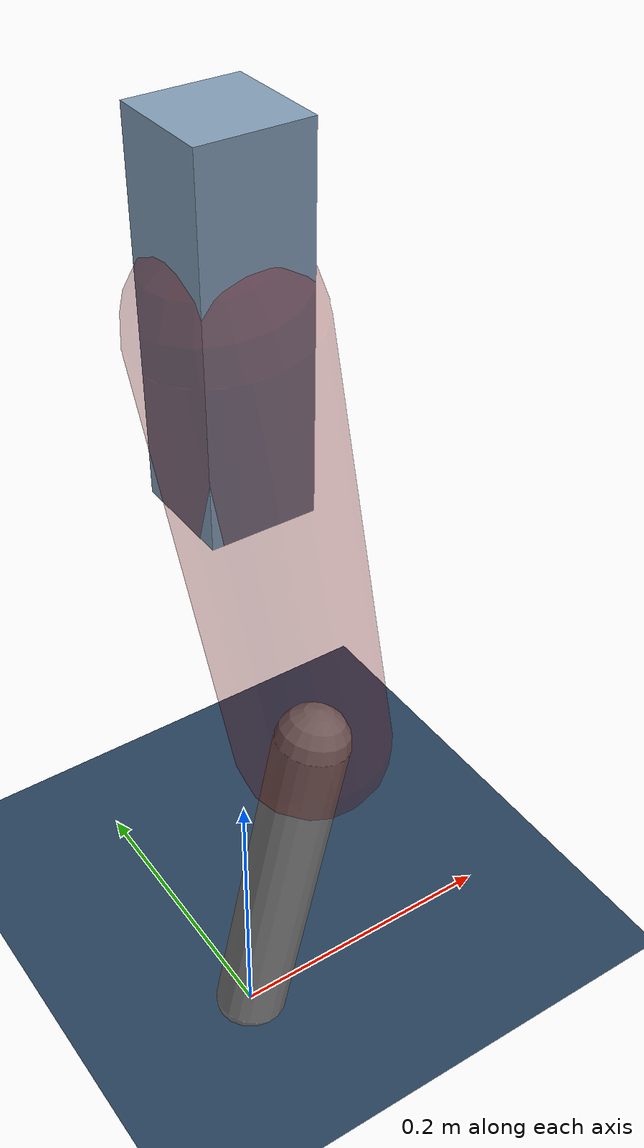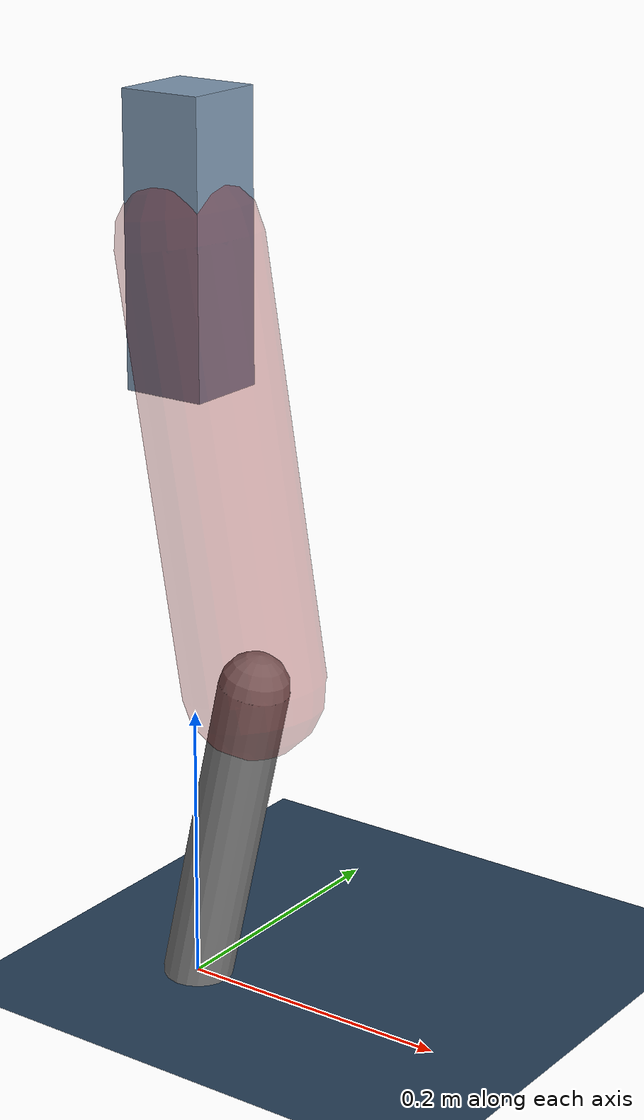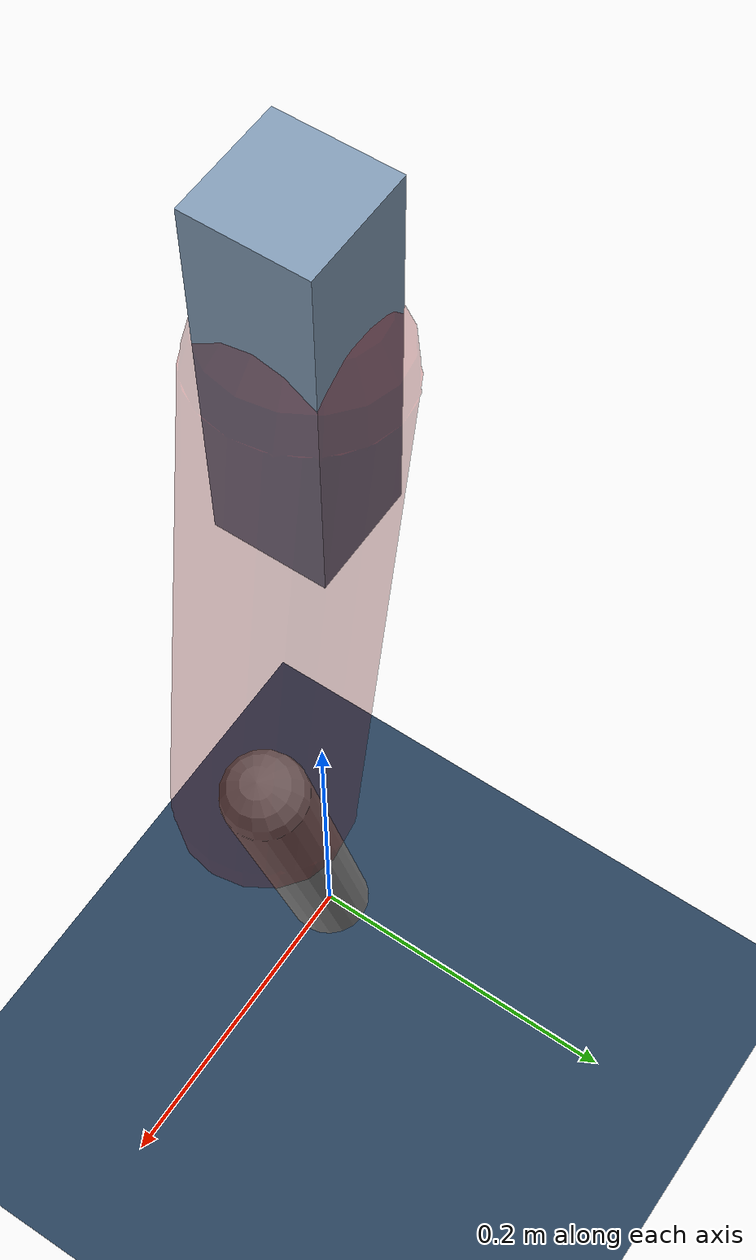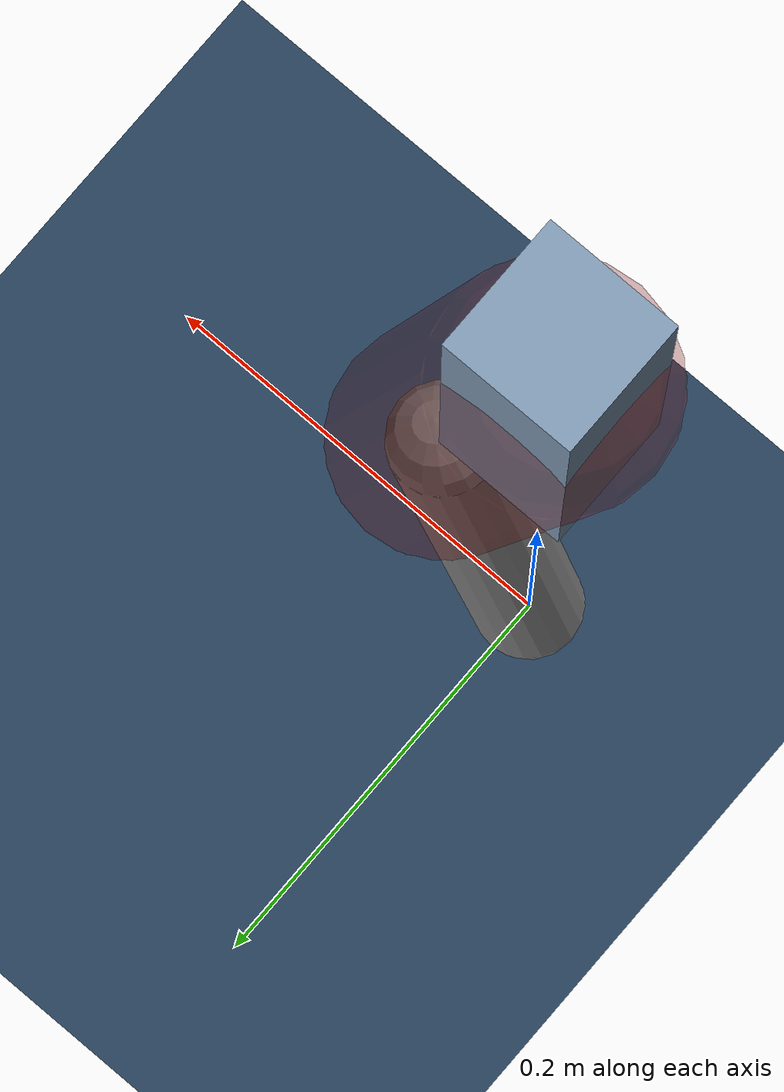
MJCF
<mujoco model="Hopper2D">
	<compiler inertiafromgeom="true" angle="radian" />
	<option timestep="0.001" integrator="implicit" cone="elliptic" solver="Newton" tolerance="1e-10" />

	<default>
		<geom contype="1" conaffinity="1" condim="3" friction="2 0.005 0.0001" solref="0.005 1" />
		<joint limited="true" damping="0.1" />
	</default>

	<asset>
		<texture name="skybox" type="skybox" builtin="gradient" rgb1=".4 .6 .8" rgb2="0 0 0" width="800" height="800" />
		<texture name="grid" type="2d" builtin="checker" rgb1=".1 .2 .3" rgb2=".2 .3 .4" width="300" height="300" mark="edge" markrgb=".2 .3 .4" />
		<material name="ground" texture="grid" texrepeat="1 1" texuniform="true" reflectance="0.1" />
		<material name="leg" rgba="0.5 0.6 0.7 1" />
	</asset>

	<worldbody>

		<geom name="floor" type="plane" size="5 5 0.25" material="ground" />

		<light directional="false" diffuse="0.8 0.8 0.8" specular="0.3 0.3 0.3" pos="0 0 2" dir="0 0 -1" />
		<light mode="targetbodycom" target="base" directional="false" diffuse="0.8 0.8 0.8" specular="0.3 0.3 0.3" pos="0 0 2" dir="0 0 -1" />

		<camera name="fixed" pos="0 -2 1" xyaxes="1 0 0 0 0 1" />
		<camera name="tracking" mode="trackcom" pos="0 -3 1" />

		<body name="root" pos="0 0 0.5348899412619449">
			<joint name="slide_x" type="slide" axis="1 0 0" range="-100 100" />
			<joint name="slide_z" type="slide" axis="0 0 1" range="0 10" />

			<body name="base" pos="0 0 0">
				<geom name="torso" type="box" size="0.03 0.03 0.1" mass="1.931" material="leg" />

				<body name="link1" pos="0 0 0" euler="0 1.4025609143696742 0">
					<joint type="hinge" axis="0 -1 0" pos="0 0 0" name="hinge1" limited="true" range="-3.14 3.14" stiffness="0" damping="0.1" />
					<geom name="thigh" type="capsule" fromto="0 0 0 0.3075998081466331 0 0" size="0.05" rgba="0.5 0 0 0.3" mass="1.0093194819959095" />

					<body name="link2" pos="0.3075998081466331 0 0" euler="0 0.38703368935381555 0">
						<joint type="hinge" axis="0 -1 0" pos="0 0 0" name="hinge2" limited="true" range="-3.14 3.14" stiffness="0" damping="0.1" />
						<geom name="shank" type="capsule" fromto="0 0 0 0.23729013311531177 0 0" size="0.025" mass="0.43203210649224943" />

					</body>
				</body>
			</body>
		</body>
	</worldbody>

	<actuator>
		<motor name="torque1" joint="hinge1" ctrlrange="-46.35890860319813 46.35890860319813" ctrllimited="true" gear="1" />
		<motor name="torque2" joint="hinge2" ctrlrange="-74.72815658847747 74.72815658847747" ctrllimited="true" gear="1" />
	</actuator>
</mujoco>
